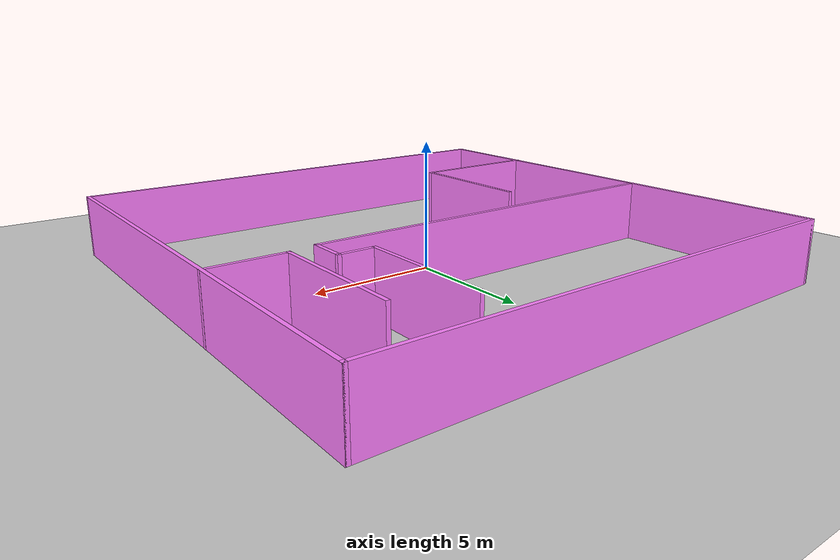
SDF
<?xml version="1.0" ?>
<sdf version="1.8">
  <world name="demo">
    <plugin
      filename="gz-sim-physics-system"
      name="gz::sim::systems::Physics">
    </plugin>
    <plugin
      filename="gz-sim-sensors-system"
      name="gz::sim::systems::Sensors">
      <render_engine>ogre2</render_engine>
    </plugin>
    <plugin
      filename="gz-sim-scene-broadcaster-system"
      name="gz::sim::systems::SceneBroadcaster">
    </plugin>
    <plugin
      filename="gz-sim-user-commands-system"
      name="gz::sim::systems::UserCommands">
    </plugin>
    <plugin
      filename="BasicSystem"
      name="ros_gz_gazebo::BasicSystem">
    </plugin>
    <plugin
      filename="FullSystem"
      name="ros_gz_gazebo::FullSystem">
    </plugin>

    <light name="sun" type="directional">
      <cast_shadows>true</cast_shadows>
      <pose>0 0 10 0 0 0</pose>
      <diffuse>0.8 0.8 0.8 1</diffuse>
      <specular>0.2 0.2 0.2 1</specular>
      <attenuation>
        <range>1000</range>
        <constant>0.9</constant>
        <linear>0.01</linear>
        <quadratic>0.001</quadratic>
      </attenuation>
      <direction>-0.5 0.1 -0.9</direction>
    </light>

    <model name="ground_plane">
      <static>true</static>
      <link name="link">
        <collision name="collision">
          <geometry>
            <plane>
              <normal>0 0 1</normal>
              <size>1000 1000</size>
            </plane>
          </geometry>
        </collision>
        <visual name="visual">
          <geometry>
            <plane>
              <normal>0 0 1</normal>
              <size>1000 1000</size>
            </plane>
          </geometry>
          <material>
            <ambient>0.8 0.8 0.8 1</ambient>
            <diffuse>0.8 0.8 0.8 1</diffuse>
            <specular>0.8 0.8 0.8 1</specular>
          </material>
        </visual>
      </link>
    </model>

    <model name="diff_drive">
      <self_collide>true</self_collide>
      <!-- change position of robot -->
      <pose>0 0 0.35 0 0 0</pose>
      <include merge="true">
        <uri>package://ros_gz_description/models/diff_drive</uri>
      </include>

      <plugin
        filename="gz-sim-joint-state-publisher-system"
        name="gz::sim::systems::JointStatePublisher">
      </plugin>

      <plugin
        filename="gz-sim-pose-publisher-system"
        name="gz::sim::systems::PosePublisher">
        <publish_link_pose>true</publish_link_pose>
        <use_pose_vector_msg>true</use_pose_vector_msg>
        <static_publisher>true</static_publisher>
        <static_update_frequency>1</static_update_frequency>
      </plugin>

      <plugin
        filename="gz-sim-odometry-publisher-system"
        name="gz::sim::systems::OdometryPublisher">
        <odom_frame>diff_drive/odom</odom_frame>
        <robot_base_frame>diff_drive</robot_base_frame>
      </plugin>
    </model>

  <model name='maze'>
    <pose>-0.078283 0.098984 0 0 -0 0</pose>
    <link name='Wall_0'>
      <collision name='Wall_0_Collision'>
        <geometry>
          <box>
            <size>20 0.15 2.5</size>
          </box>
        </geometry>
        <pose frame=''>0 0 1.25 0 -0 0</pose>
      </collision>
      <visual name='Wall_0_Visual'>
        <pose frame=''>0 0 1.25 0 -0 0</pose>
        <geometry>
          <box>
            <size>20 0.15 2.5</size>
          </box>
        </geometry>
        <material>
          <ambient>1 .5 1 1</ambient>
          <diffuse>1 .5 1 1</diffuse>
          <specular>1 .5 1 1</specular>
        </material>
      </visual>
      <pose frame=''>0.030536 9.925 0 0 -0 0</pose>
    </link>
    <link name='Wall_1'>
      <collision name='Wall_1_Collision'>
        <geometry>
          <box>
            <size>20 0.15 2.5</size>
          </box>
        </geometry>
        <pose frame=''>0 0 1.25 0 -0 0</pose>
      </collision>
      <visual name='Wall_1_Visual'>
        <pose frame=''>0 0 1.25 0 -0 0</pose>
        <geometry>
          <box>
            <size>20 0.15 2.5</size>
          </box>
        </geometry>
        <material>
          <ambient>1 .5 1 1</ambient>
          <diffuse>1 .5 1 1</diffuse>
          <specular>1 .5 1 1</specular>
        </material>
      </visual>
      <pose frame=''>9.95554 0 0 0 0 -1.5708</pose>
    </link>
    <link name='Wall_2'>
      <collision name='Wall_2_Collision'>
        <geometry>
          <box>
            <size>20 0.15 2.5</size>
          </box>
        </geometry>
        <pose frame=''>0 0 1.25 0 -0 0</pose>
      </collision>
      <visual name='Wall_2_Visual'>
        <pose frame=''>0 0 1.25 0 -0 0</pose>
        <geometry>
          <box>
            <size>20 0.15 2.5</size>
          </box>
        </geometry>
        <material>
          <ambient>1 1 1 1</ambient>
          <diffuse>1 .5 1 1</diffuse>
          <specular>1 .5 1 1</specular>
        </material>
      </visual>
      <pose frame=''>0.030536 -9.925 0 0 -0 3.14159</pose>
    </link>
    <link name='Wall_24'>
      <collision name='Wall_24_Collision'>
        <geometry>
          <box>
            <size>1.5 0.15 2.5</size>
          </box>
        </geometry>
        <pose frame=''>0 0 1.25 0 -0 0</pose>
      </collision>
      <visual name='Wall_24_Visual'>
        <pose frame=''>0 0 1.25 0 -0 0</pose>
        <geometry>
          <box>
            <size>1.5 0.15 2.5</size>
          </box>
        </geometry>
        <material>
          <ambient>1 1 1 1</ambient>
          <diffuse>1 .5 1 1</diffuse>
          <specular>1 .5 1 1</specular>
        </material>
      </visual>
      <pose frame=''>5.35089 3.21906 0 0 -0 3.14159</pose>
    </link>
    <link name='Wall_25'>
      <collision name='Wall_25_Collision'>
        <geometry>
          <box>
            <size>5.25 0.15 2.5</size>
          </box>
        </geometry>
        <pose frame=''>0 0 1.25 0 -0 0</pose>
      </collision>
      <visual name='Wall_25_Visual'>
        <pose frame=''>0 0 1.25 0 -0 0</pose>
        <geometry>
          <box>
            <size>5.25 0.15 2.5</size>
          </box>
        </geometry>
        <material>
          <ambient>1 1 1 1</ambient>
          <diffuse>1 .5 1 1</diffuse>
          <specular>1 .5 1 1</specular>
        </material>
      </visual>
      <pose frame=''>4.67589 5.76906 0 0 -0 1.5708</pose>
    </link>
    <link name='Wall_27'>
      <collision name='Wall_27_Collision'>
        <geometry>
          <box>
            <size>5.5 0.15 2.5</size>
          </box>
        </geometry>
        <pose frame=''>0 0 1.25 0 -0 0</pose>
      </collision>
      <visual name='Wall_27_Visual'>
        <pose frame=''>0 0 1.25 0 -0 0</pose>
        <geometry>
          <box>
            <size>5.5 0.15 2.5</size>
          </box>
        </geometry>
        <material>
          <ambient>1 1 1 1</ambient>
          <diffuse>1 .5 1 1</diffuse>
          <specular>1 .5 1 1</specular>
        </material>
      </visual>
      <pose frame=''>7.10914 4.73454 0 0 0 -1.5708</pose>
    </link>
    <link name='Wall_28'>
      <collision name='Wall_28_Collision'>
        <geometry>
          <box>
            <size>3 0.15 2.5</size>
          </box>
        </geometry>
        <pose frame=''>0 0 1.25 0 -0 0</pose>
      </collision>
      <visual name='Wall_28_Visual'>
        <pose frame=''>0 0 1.25 0 -0 0</pose>
        <geometry>
          <box>
            <size>3 0.15 2.5</size>
          </box>
        </geometry>
        <material>
          <ambient>1 1 1 1</ambient>
          <diffuse>1 .5 1 1</diffuse>
          <specular>1 .5 1 1</specular>
        </material>
      </visual>
      <pose frame=''>8.53414 2.05954 0 0 -0 0</pose>
    </link>
    <link name='Wall_3'>
      <collision name='Wall_3_Collision'>
        <geometry>
          <box>
            <size>20 0.15 2.5</size>
          </box>
        </geometry>
        <pose frame=''>0 0 1.25 0 -0 0</pose>
      </collision>
      <visual name='Wall_3_Visual'>
        <pose frame=''>0 0 1.25 0 -0 0</pose>
        <geometry>
          <box>
            <size>20 0.15 2.5</size>
          </box>
        </geometry>
        <material>
          <ambient>1 1 1 1</ambient>
          <diffuse>1 .5 1 1</diffuse>
          <specular>1 .5 1 1</specular>
        </material>
      </visual>
      <pose frame=''>-9.89446 0 0 0 -0 1.5708</pose>
    </link>
    <link name='Wall_30'>
      <collision name='Wall_30_Collision'>
        <geometry>
          <box>
            <size>5.5 0.15 2.5</size>
          </box>
        </geometry>
        <pose frame=''>0 0 1.25 0 -0 0</pose>
      </collision>
      <visual name='Wall_30_Visual'>
        <pose frame=''>0 0 1.25 0 -0 0</pose>
        <geometry>
          <box>
            <size>5.5 0.15 2.5</size>
          </box>
        </geometry>
        <material>
          <ambient>1 1 1 1</ambient>
          <diffuse>1 .5 1 1</diffuse>
          <specular>1 .5 1 1</specular>
        </material>
      </visual>
      <pose frame=''>-4.35914 -2.82889 0 0 0 -1.5708</pose>
    </link>
    <link name='Wall_31'>
      <collision name='Wall_31_Collision'>
        <geometry>
          <box>
            <size>5.75 0.15 2.5</size>
          </box>
        </geometry>
        <pose frame=''>0 0 1.25 0 -0 0</pose>
      </collision>
      <visual name='Wall_31_Visual'>
        <pose frame=''>0 0 1.25 0 -0 0</pose>
        <geometry>
          <box>
            <size>5.75 0.15 2.5</size>
          </box>
        </geometry>
        <material>
          <ambient>1 1 1 1</ambient>
          <diffuse>1 .5 1 1</diffuse>
          <specular>1 .5 1 1</specular>
        </material>
      </visual>
      <pose frame=''>-7.15914 -5.50389 0 0 -0 3.14159</pose>
    </link>
    <link name='Wall_5'>
      <collision name='Wall_5_Collision'>
        <geometry>
          <box>
            <size>16 0.15 2.5</size>
          </box>
        </geometry>
        <pose frame=''>0 0 1.25 0 -0 0</pose>
      </collision>
      <visual name='Wall_5_Visual'>
        <pose frame=''>0 0 1.25 0 -0 0</pose>
        <geometry>
          <box>
            <size>16 0.15 2.5</size>
          </box>
        </geometry>
        <material>
          <ambient>1 1 1 1</ambient>
          <diffuse>1 .5 1 1</diffuse>
          <specular>1 .5 1 1</specular>
        </material>
      </visual>
      <pose frame=''>-1.89911 1.86906 0 0 -0 0</pose>
    </link>
    <link name='Wall_6'>
      <collision name='Wall_6_Collision'>
        <geometry>
          <box>
            <size>1.5 0.15 2.5</size>
          </box>
        </geometry>
        <pose frame=''>0 0 1.25 0 -0 0</pose>
      </collision>
      <visual name='Wall_6_Visual'>
        <pose frame=''>0 0 1.25 0 -0 0</pose>
        <geometry>
          <box>
            <size>1.5 0.15 2.5</size>
          </box>
        </geometry>
        <material>
          <ambient>1 1 1 1</ambient>
          <diffuse>1 .5 1 1</diffuse>
          <specular>1 .5 1 1</specular>
        </material>
      </visual>
      <pose frame=''>6.02589 2.54406 0 0 -0 1.5708</pose>
    </link>
    <link name='Wall_8'>
      <collision name='Wall_8_Collision'>
        <geometry>
          <box>
            <size>0.15 0.15 2.5</size>
          </box>
        </geometry>
        <pose frame=''>0 0 1.25 0 -0 0</pose>
      </collision>
      <visual name='Wall_8_Visual'>
        <pose frame=''>0 0 1.25 0 -0 0</pose>
        <geometry>
          <box>
            <size>0.15 0.15 2.5</size>
          </box>
        </geometry>
        <material>
          <ambient>1 1 1 1</ambient>
          <diffuse>1 .5 1 1</diffuse>
          <specular>1 .5 1 1</specular>
        </material>
      </visual>
      <pose frame=''>6.02589 3.21906 0 0 -0 0</pose>
    </link>
    <static>1</static>
  </model>

  </world>
</sdf>

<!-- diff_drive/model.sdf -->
<sdf version="1.8">
    <model name='diff_drive'>
      <link name='chassis'>
        <pose>-0.151427 -0 0.175 0 -0 0</pose>
        <inertial>
          <mass>1.14395</mass>
          <inertia>
            <ixx>0.126164</ixx>
            <ixy>0</ixy>
            <ixz>0</ixz>
            <iyy>0.416519</iyy>
            <iyz>0</iyz>
            <izz>0.481014</izz>
          </inertia>
        </inertial>
        <visual name='visual_chassis'>
          <geometry>
            <box>
              <size>2.01142 1 0.568726</size>
            </box>
          </geometry>
          <material>
            <ambient>0.5 0.5 1.0 1</ambient>
            <diffuse>0.5 0.5 1.0 1</diffuse>
            <specular>0.0 0.0 1.0 1</specular>
          </material>
        </visual>
        <collision name='collision_chassis'>
          <geometry>
            <box>
              <size>2.01142 1 0.568726</size>
            </box>
          </geometry>
        </collision>
      </link>

      <link name='left_wheel'>
        <pose>0.554283 0.625029 -0.025 -1.5707 0 0</pose>
        <inertial>
          <mass>2</mass>
          <inertia>
            <ixx>0.145833</ixx>
            <ixy>0</ixy>
            <ixz>0</ixz>
            <iyy>0.145833</iyy>
            <iyz>0</iyz>
            <izz>0.125</izz>
          </inertia>
        </inertial>
        <visual name='visual_left_wheel'>
          <geometry>
            <sphere>
              <radius>0.3</radius>
            </sphere>
          </geometry>
          <material>
            <ambient>0.2 0.2 0.2 1</ambient>
            <diffuse>0.2 0.2 0.2 1</diffuse>
            <specular>0.2 0.2 0.2 1</specular>
          </material>
        </visual>
        <collision name='collision_left_wheel'>
          <geometry>
            <sphere>
              <radius>0.3</radius>
            </sphere>
          </geometry>
        </collision>
      </link>

      <link name='right_wheel'>
        <pose>0.554282 -0.625029 -0.025 -1.5707 0 0</pose>
        <inertial>
          <mass>2</mass>
          <inertia>
            <ixx>0.145833</ixx>
            <ixy>0</ixy>
            <ixz>0</ixz>
            <iyy>0.145833</iyy>
            <iyz>0</iyz>
            <izz>0.125</izz>
          </inertia>
        </inertial>
        <visual name='visual_right_wheel'>
          <geometry>
            <sphere>
              <radius>0.3</radius>
            </sphere>
          </geometry>
          <material>
            <ambient>0.2 0.2 0.2 1</ambient>
            <diffuse>0.2 0.2 0.2 1</diffuse>
            <specular>0.2 0.2 0.2 1</specular>
          </material>
        </visual>
        <collision name='collision_right_wheel'>
          <geometry>
            <sphere>
              <radius>0.3</radius>
            </sphere>
          </geometry>
        </collision>
      </link>

      <link name='caster'>
        <pose>-0.957138 -0 -0.125 0 -0 0</pose>
        <inertial>
          <mass>1</mass>
          <inertia>
            <ixx>0.1</ixx>
            <ixy>0</ixy>
            <ixz>0</ixz>
            <iyy>0.1</iyy>
            <iyz>0</iyz>
            <izz>0.1</izz>
          </inertia>
        </inertial>
        <visual name='visual_caster'>
          <geometry>
            <sphere>
              <radius>0.2</radius>
            </sphere>
          </geometry>
          <material>
            <ambient>0.2 0.2 0.2 1</ambient>
            <diffuse>0.2 0.2 0.2 1</diffuse>
            <specular>0.2 0.2 0.2 1</specular>
          </material>
        </visual>
        <collision name='collision_caster'>
          <geometry>
            <sphere>
              <radius>0.2</radius>
            </sphere>
          </geometry>
        </collision>
      </link>

      <link name="lidar_link">
        <pose>0 0 0.5 0 0 0</pose>
        <inertial>
          <mass>0.1</mass>
          <inertia>
            <ixx>0.000166667</ixx>
            <iyy>0.000166667</iyy>
            <izz>0.000166667</izz>
          </inertia>
        </inertial>
        <collision name="collision">
          <geometry>
            <box>
              <size>0.1 0.1 0.1</size>
            </box>
          </geometry>
        </collision>
        <visual name="visual">
          <geometry>
            <box>
              <size>0.1 0.1 0.1</size>
            </box>
          </geometry>
        </visual>
        <!-- Sensor -->
        <sensor name='gpu_lidar' type='gpu_lidar'>
          <pose>0 0 0 0 0 0</pose>
          <topic>scan</topic>
          <gz_frame_id>diff_drive/lidar_link</gz_frame_id>
          <update_rate>10</update_rate>
          <always_on>1</always_on>
          <lidar>
            <scan>
              <horizontal>
                <!-- samples 2 -->
                <samples>3</samples>
                <resolution>1</resolution>
                <!-- min angle -1.570796 -->
                <min_angle>0.0</min_angle>
                <max_angle>1.570796</max_angle>
              </horizontal>
              <vertical>
                <samples>1</samples>
                <resolution>1</resolution>
                <min_angle>0.0</min_angle>
                <max_angle>0.0</max_angle>
              </vertical>
            </scan>
            <range>
              <min>0.08</min>
              <max>100.0</max>
              <resolution>0.01</resolution>
            </range>
            <noise>
              <type>gaussian</type>
              <mean>0.0</mean>
              <stddev>0.01</stddev>
            </noise>
          </lidar>
          <visualize>true</visualize>
        </sensor>
      </link>

      <joint name='lidar_joint' type='fixed'>
        <parent>chassis</parent>
        <child>lidar_link</child>
      </joint>

      <joint name='left_wheel_joint' type='revolute'>
        <parent>chassis</parent>
        <child>left_wheel</child>
        <axis>
          <xyz>0 0 1</xyz>
          <limit>
            <lower>-1.79769e+308</lower>
            <upper>1.79769e+308</upper>
          </limit>
        </axis>
      </joint>

      <joint name='right_wheel_joint' type='revolute'>
        <parent>chassis</parent>
        <child>right_wheel</child>
        <axis>
          <xyz>0 0 1</xyz>
          <limit>
            <lower>-1.79769e+308</lower>
            <upper>1.79769e+308</upper>
          </limit>
        </axis>
      </joint>

      <joint name='caster_wheel' type='ball'>
        <parent>chassis</parent>
        <child>caster</child>
      </joint>

      <plugin
        filename="ignition-gazebo-diff-drive-system"
        name="ignition::gazebo::systems::DiffDrive">
        <left_joint>left_wheel_joint</left_joint>
        <right_joint>right_wheel_joint</right_joint>
        <wheel_separation>1.25</wheel_separation>
        <wheel_radius>0.3</wheel_radius>
        <odom_publish_frequency>1</odom_publish_frequency>
        <max_linear_acceleration>1</max_linear_acceleration>
        <min_linear_acceleration>-1</min_linear_acceleration>
        <max_angular_acceleration>2</max_angular_acceleration>
        <min_angular_acceleration>-2</min_angular_acceleration>
        <max_linear_velocity>0.5</max_linear_velocity>
        <min_linear_velocity>-0.5</min_linear_velocity>
        <max_angular_velocity>1</max_angular_velocity>
        <min_angular_velocity>-1</min_angular_velocity>
      </plugin>
    </model>
</sdf>
